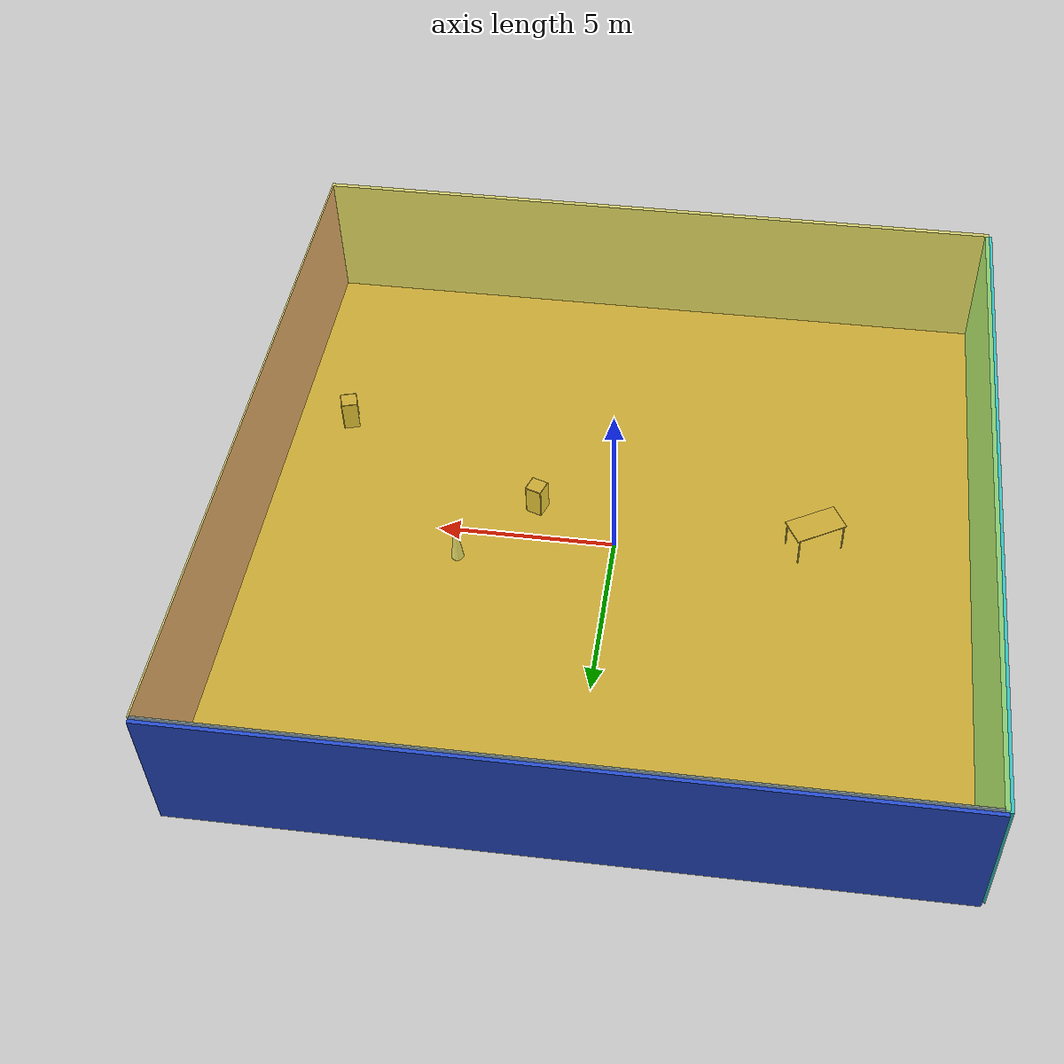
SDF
<sdf version="1.4">
 <world name="default">
  <physics type="ode">
   <max_step_size>0.001</max_step_size>
   <real_time_factor>1</real_time_factor>
   <real_time_update_rate>1000</real_time_update_rate>
   <gravity>0 0 -9.8</gravity>
  </physics>
  <scene><ambient>0.4 0.4 0.4 1</ambient><background>0.7 0.7 0.7 1</background><shadows>1</shadows></scene>
  <model name="Surrounding">
   <static>1</static>
   <link name="Ceiling">
    <collision name="Ceiling_Collision"><geometry><box><size>20 20 0.1</size></box></geometry></collision>
    <visual name="Ceiling_Visual">
     <geometry><box><size>20 20 0.1</size></box></geometry>
     <material>
      <script>
       <uri>file://media/materials/scripts/gazebo.material</uri>
       <name>Gazebo/YellowTransparent</name>
      </script>
     </material>
    </visual>
    <pose>0 0 4.05 0 0 0</pose>
   </link>
   <link name="Wall_South">
    <collision name="Wall_South_Collision">
     <geometry><box><size>20 0 4</size></box></geometry>
     <pose>0 0 2 0 -0 0</pose>
    </collision>
    <visual name="Wall_South_Visual">
     <pose>0 0 2 0 -0 0</pose>
     <geometry><box><size>20 0 4</size></box></geometry>
     <material>
      <script><uri>file://media/materials/scripts/gazebo.material</uri><name>Gazebo/LightOff</name></script>
     </material>
    </visual>
    <velocity_decay><linear>0</linear><angular>0</angular></velocity_decay>
    <pose>0 -10 0 0 -0 0</pose>
   </link>
   <link name="Wall_East">
    <collision name="Wall_21_Collision">
     <geometry><box><size>20 0 4</size></box></geometry>
     <pose>0 0 2 0 -0 0</pose>
    </collision>
    <visual name="Wall_21_Visual">
     <pose>0 0 2 0 -0 0</pose>
     <geometry><box><size>20 0 4</size></box></geometry>
     <material>
      <script><uri>file://media/materials/scripts/gazebo.material</uri><name>Gazebo/PurpleGlow</name></script>
     </material>
    </visual>
    <velocity_decay><linear>0</linear><angular>0</angular></velocity_decay>
    <pose>10 0 0 0 -0 1.5708</pose>
   </link>
   <link name="Wall_North">
    <collision name="Wall_22_Collision">
     <geometry><box><size>20 0.2 4</size></box></geometry>
     <pose>0 0 2 0 -0 0</pose>
    </collision>
    <visual name="Wall_22_Visual">
     <pose>0 0 2 0 -0 0</pose>
     <geometry><box><size>20 0.2 4</size></box></geometry>
     <material>
      <script><uri>file://media/materials/scripts/gazebo.material</uri><name>Gazebo/BlueLaser</name></script>
     </material>
    </visual>
    <velocity_decay><linear>0</linear><angular>0</angular></velocity_decay>
    <pose>0 10 0 0 -0 0</pose>
   </link>
   <link name="Wall_West">
    <collision name="Wall_23_Collision">
     <geometry><box><size>20 0.2 4</size></box></geometry>
     <pose>0 0 2 0 -0 0</pose>
    </collision>
    <visual name="Wall_23_Visual">
     <pose>0 0 2 0 -0 0</pose>
     <geometry><box><size>20 0.2 4</size></box></geometry>
     <material>
      <script><uri>file://media/materials/scripts/gazebo.material</uri><name>Gazebo/TurquoiseGlow</name></script>
     </material>
    </visual>
    <velocity_decay><linear>0</linear><angular>0</angular></velocity_decay>
    <pose>-10 0 0 0 0 -1.5708</pose>
   </link>
   <link name="Ground_link">
    <collision name="collision">
     <pose>0 0 .05 0 -0 0</pose>
     <geometry><box><size>20 20 0.1</size></box></geometry>
    </collision>
    <visual name="visual">
     <pose>0 0 .05 0 -0 0</pose>
     <geometry><box><size>20 20 0.1</size></box></geometry>
     <material>
      <script><uri>file://media/materials/scripts/gazebo.material</uri><name>Gazebo/Wood</name></script>
     </material>
    </visual>
   </link>
   <static>1</static>
  </model>
  <spherical_coordinates>
   <surface_model>EARTH_WGS84</surface_model>
   <latitude_deg>0</latitude_deg>
   <longitude_deg>0</longitude_deg>
   <elevation>0</elevation>
   <heading_deg>0</heading_deg>
  </spherical_coordinates>
  <light name="lightball_0" type="diffuse">
   <diffuse>0.8 0.8 0.8 1</diffuse>
   <specular>0.2 0.2 0.2 1</specular>
   <attenuation>
    <range>100</range>
    <constant>0.7</constant>
    <linear>0.01</linear>
    <quadratic>0.001</quadratic>
   </attenuation>
   <direction>-0.5 0.1 -0.9</direction>
   <pose>-6.46920272594 0.415939435179 0.548049722856 0 0 0</pose>
  </light>
  <light name="lightball_1" type="diffuse">
   <diffuse>0.8 0.8 0.8 1</diffuse>
   <specular>0.2 0.2 0.2 1</specular>
   <attenuation>
    <range>100</range>
    <constant>0.7</constant>
    <linear>0.01</linear>
    <quadratic>0.001</quadratic>
   </attenuation>
   <direction>-0.5 0.1 -0.9</direction>
   <pose>2.61646861189 0.193820318677 0.982517979763 0 0 0</pose>
  </light>
  <light name="lightball_2" type="diffuse">
   <diffuse>0.8 0.8 0.8 1</diffuse>
   <specular>0.2 0.2 0.2 1</specular>
   <attenuation>
    <range>100</range>
    <constant>0.7</constant>
    <linear>0.01</linear>
    <quadratic>0.001</quadratic>
   </attenuation>
   <direction>-0.5 0.1 -0.9</direction>
   <pose>-0.443490004944 1.01327773132 3.28086880282 0 0 0</pose>
  </light>
  <light name="lightball_3" type="diffuse">
   <diffuse>0.8 0.8 0.8 1</diffuse>
   <specular>0.2 0.2 0.2 1</specular>
   <attenuation>
    <range>100</range>
    <constant>0.7</constant>
    <linear>0.01</linear>
    <quadratic>0.001</quadratic>
   </attenuation>
   <direction>-0.5 0.1 -0.9</direction>
   <pose>8.55776321502 6.81443403794 1.96121543733 0 0 0</pose>
  </light>
  <light name="lightball_4" type="diffuse">
   <diffuse>0.8 0.8 0.8 1</diffuse>
   <specular>0.2 0.2 0.2 1</specular>
   <attenuation>
    <range>100</range>
    <constant>0.7</constant>
    <linear>0.01</linear>
    <quadratic>0.001</quadratic>
   </attenuation>
   <direction>-0.5 0.1 -0.9</direction>
   <pose>5.74001837436 2.3449808499 3.54255982728 0 0 0</pose>
  </light>
  <light name="lightball_5" type="diffuse">
   <diffuse>0.8 0.8 0.8 1</diffuse>
   <specular>0.2 0.2 0.2 1</specular>
   <attenuation>
    <range>100</range>
    <constant>0.7</constant>
    <linear>0.01</linear>
    <quadratic>0.001</quadratic>
   </attenuation>
   <direction>-0.5 0.1 -0.9</direction>
   <pose>-0.825140885839 -9.109253587 0.998201205718 0 0 0</pose>
  </light>
  <light name="lightball_6" type="diffuse">
   <diffuse>0.8 0.8 0.8 1</diffuse>
   <specular>0.2 0.2 0.2 1</specular>
   <attenuation>
    <range>100</range>
    <constant>0.7</constant>
    <linear>0.01</linear>
    <quadratic>0.001</quadratic>
   </attenuation>
   <direction>-0.5 0.1 -0.9</direction>
   <pose>-5.02059934811 3.80131162305 3.13866864563 0 0 0</pose>
  </light>
  <light name="lightball_7" type="diffuse">
   <diffuse>0.8 0.8 0.8 1</diffuse>
   <specular>0.2 0.2 0.2 1</specular>
   <attenuation>
    <range>100</range>
    <constant>0.7</constant>
    <linear>0.01</linear>
    <quadratic>0.001</quadratic>
   </attenuation>
   <direction>-0.5 0.1 -0.9</direction>
   <pose>4.03944541575 6.25088732867 3.67781282801 0 0 0</pose>
  </light>
  <light name="lightball_8" type="diffuse">
   <diffuse>0.8 0.8 0.8 1</diffuse>
   <specular>0.2 0.2 0.2 1</specular>
   <attenuation>
    <range>100</range>
    <constant>0.7</constant>
    <linear>0.01</linear>
    <quadratic>0.001</quadratic>
   </attenuation>
   <direction>-0.5 0.1 -0.9</direction>
   <pose>1.62141587981 0.970942724163 3.74748698837 0 0 0</pose>
  </light>
  <light name="lightball_9" type="diffuse">
   <diffuse>0.8 0.8 0.8 1</diffuse>
   <specular>0.2 0.2 0.2 1</specular>
   <attenuation>
    <range>100</range>
    <constant>0.7</constant>
    <linear>0.01</linear>
    <quadratic>0.001</quadratic>
   </attenuation>
   <direction>-0.5 0.1 -0.9</direction>
   <pose>3.79091284276 4.17277321416 1.42953292436 0 0 0</pose>
  </light>
  <light name="lightball_10" type="diffuse">
   <diffuse>0.8 0.8 0.8 1</diffuse>
   <specular>0.2 0.2 0.2 1</specular>
   <attenuation>
    <range>100</range>
    <constant>0.7</constant>
    <linear>0.01</linear>
    <quadratic>0.001</quadratic>
   </attenuation>
   <direction>-0.5 0.1 -0.9</direction>
   <pose>7.43370697572 -5.58594946398 1.16674952998 0 0 0</pose>
  </light>
  <light name="lightball_11" type="diffuse">
   <diffuse>0.8 0.8 0.8 1</diffuse>
   <specular>0.2 0.2 0.2 1</specular>
   <attenuation>
    <range>100</range>
    <constant>0.7</constant>
    <linear>0.01</linear>
    <quadratic>0.001</quadratic>
   </attenuation>
   <direction>-0.5 0.1 -0.9</direction>
   <pose>1.49974851424 -0.185942530053 2.89473784052 0 0 0</pose>
  </light>
  <light name="lightball_12" type="diffuse">
   <diffuse>0.8 0.8 0.8 1</diffuse>
   <specular>0.2 0.2 0.2 1</specular>
   <attenuation>
    <range>100</range>
    <constant>0.7</constant>
    <linear>0.01</linear>
    <quadratic>0.001</quadratic>
   </attenuation>
   <direction>-0.5 0.1 -0.9</direction>
   <pose>-3.17364956064 -8.01308473851 2.18797683831 0 0 0</pose>
  </light>
  <light name="lightball_13" type="diffuse">
   <diffuse>0.8 0.8 0.8 1</diffuse>
   <specular>0.2 0.2 0.2 1</specular>
   <attenuation>
    <range>100</range>
    <constant>0.7</constant>
    <linear>0.01</linear>
    <quadratic>0.001</quadratic>
   </attenuation>
   <direction>-0.5 0.1 -0.9</direction>
   <pose>-1.7604371278 -9.18840504067 2.9000156663 0 0 0</pose>
  </light>
  <include><uri>model://table</uri><pose>-5.54279823367 -0.577077111445 0 0 0 0.518253937163</pose></include>
  <include><uri>model://cabinet</uri><pose>2.35142417978 -1.05532226006 0 0 0 1.24080935393</pose></include>
  <include>
   <uri>model://construction_cone</uri>
   <pose>4.28497583314 1.02547196066 0 0 0 0.777983717437</pose>
  </include>
  <include><uri>model://cabinet</uri><pose>8.40988097477 -3.77545662863 0 0 0 0.278951420972</pose></include>
 </world>
</sdf>

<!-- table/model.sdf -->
<sdf version="1.5">
  <model name="table">
    <static>true</static>
    <link name="link">
      <collision name="surface">
        <pose>0 0 1.0 0 0 0</pose>
        <geometry>
          <box>
            <size>1.5 0.8 0.03</size>
          </box>
        </geometry>
        <surface>
          <friction>
            <ode>
              <mu>0.6</mu>
              <mu2>0.6</mu2>
            </ode>
          </friction>
        </surface>
      </collision>
      <visual name="visual1">
        <pose>0 0 1.0 0 0 0</pose>
        <geometry>
          <box>
            <size>1.5 0.8 0.03</size>
          </box>
        </geometry>
        <material>
          <script>
            <uri>model://media/materials/scripts/gazebo.material</uri>
            <name>Gazebo/Wood</name>
          </script>
        </material>
      </visual>
      <collision name="front_left_leg">
        <pose>0.68 0.38 0.5 0 0 0</pose>
        <geometry>
          <cylinder>
            <radius>0.02</radius>
            <length>1.0</length>
          </cylinder>
        </geometry>
      </collision>
      <visual name="front_left_leg">
        <pose>0.68 0.38 0.5 0 0 0</pose>
        <geometry>
          <cylinder>
            <radius>0.02</radius>
            <length>1.0</length>
          </cylinder>
        </geometry>
        <material>
          <script>
            <uri>model://media/materials/scripts/gazebo.material</uri>
            <name>Gazebo/Grey</name>
          </script>
        </material>
      </visual>
      <collision name="front_right_leg">
        <pose>0.68 -0.38 0.5 0 0 0</pose>
        <geometry>
          <cylinder>
            <radius>0.02</radius>
            <length>1.0</length>
          </cylinder>
        </geometry>
      </collision>
      <visual name="front_right_leg">
        <pose>0.68 -0.38 0.5 0 0 0</pose>
        <geometry>
          <cylinder>
            <radius>0.02</radius>
            <length>1.0</length>
          </cylinder>
        </geometry>
        <material>
          <script>
            <uri>model://media/materials/scripts/gazebo.material</uri>
            <name>Gazebo/Grey</name>
          </script>
        </material>
      </visual>
      <collision name="back_right_leg">
        <pose>-0.68 -0.38 0.5 0 0 0</pose>
        <geometry>
          <cylinder>
            <radius>0.02</radius>
            <length>1.0</length>
          </cylinder>
        </geometry>
      </collision>
      <visual name="back_right_leg">
        <pose>-0.68 -0.38 0.5 0 0 0</pose>
        <geometry>
          <cylinder>
            <radius>0.02</radius>
            <length>1.0</length>
          </cylinder>
        </geometry>
        <material>
          <script>
            <uri>model://media/materials/scripts/gazebo.material</uri>
            <name>Gazebo/Grey</name>
          </script>
        </material>
      </visual>
      <collision name="back_left_leg">
        <pose>-0.68 0.38 0.5 0 0 0</pose>
        <geometry>
          <cylinder>
            <radius>0.02</radius>
            <length>1.0</length>
          </cylinder>
        </geometry>
      </collision>
      <visual name="back_left_leg">
        <pose>-0.68 0.38 0.5 0 0 0</pose>
        <geometry>
          <cylinder>
            <radius>0.02</radius>
            <length>1.0</length>
          </cylinder>
        </geometry>
        <material>
          <script>
            <uri>model://media/materials/scripts/gazebo.material</uri>
            <name>Gazebo/Grey</name>
          </script>
        </material>
      </visual>
    </link>
  </model>
</sdf>

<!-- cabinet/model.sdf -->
<sdf version="1.5">
  <model name="cabinet">
    <static>true</static>
    <link name="cabinet_bottom_plate">
      <inertial>
        <pose>0 0 -1 0 0 0</pose>
        <inertia>
          <ixx>2.050000</ixx>
          <ixy>0</ixy>
          <ixz>0</ixz>
          <iyy>2.050000</iyy>
          <iyz>0</iyz>
          <izz>2.050000</izz>
        </inertia>
        <mass>25.000000</mass>
      </inertial>
      <collision name="cabinet_bottom_plate_geom">
        <pose>0 0 0.010000 0 0 0</pose>
        <geometry>
          <box>
            <size>0.450000 0.450000 0.020000</size>
          </box>
        </geometry>
      </collision>
      <visual name="cabinet_bottom_plate_geom_visual">
        <pose>0 0 0.010000 0 0 0</pose>
        <geometry>
          <box>
            <size>0.450000 0.450000 0.020000</size>
          </box>
        </geometry>
        <material>
          <script>
            <uri>model://media/materials/scripts/gazebo.material</uri>
            <name>Gazebo/Wood</name>
          </script>
        </material>
      </visual>
      <collision name="cabinet_bottom_plate_geom_cabinet_back_plate">
        <pose>0.235000 0 0.510000 0 0 0</pose>
        <geometry>
          <box>
            <size>0.020000 0.450000 1.020000</size>
          </box>
        </geometry>
      </collision>
      <visual name="cabinet_bottom_plate_geom_cabinet_back_plate_visual">
        <pose>0.235000 0 0.510000 0 0 0</pose>
        <geometry>
          <box>
            <size>0.020000 0.450000 1.020000</size>
          </box>
        </geometry>
        <material>
          <script>
            <uri>model://media/materials/scripts/gazebo.material</uri>
            <name>Gazebo/Wood</name>
          </script>
        </material>
      </visual>
      <collision name="cabinet_bottom_plate_geom_cabinet_left_plate">
        <pose>0 0.235000 0.510000 0 0 0</pose>
        <geometry>
          <box>
            <size>0.450000 0.020000 1.020000</size>
          </box>
        </geometry>
      </collision>
      <visual name="cabinet_bottom_plate_geom_cabinet_left_plate_visual">
        <pose>0 0.235000 0.510000 0 0 0</pose>
        <geometry>
          <box>
            <size>0.450000 0.020000 1.020000</size>
          </box>
        </geometry>
        <material>
          <script>
            <uri>model://media/materials/scripts/gazebo.material</uri>
            <name>Gazebo/Wood</name>
          </script>
        </material>
      </visual>
      <collision name="cabinet_bottom_plate_geom_cabinet_middle_plate">
        <pose>0 0 0.510000 0 0 0</pose>
        <geometry>
          <box>
            <size>0.450000 0.450000 0.020000</size>
          </box>
        </geometry>
      </collision>
      <visual name="cabinet_bottom_plate_geom_cabinet_middle_plate_visual">
        <pose>0 0 0.510000 0 0 0</pose>
        <geometry>
          <box>
            <size>0.450000 0.450000 0.020000</size>
          </box>
        </geometry>
        <material>
          <script>
            <uri>model://media/materials/scripts/gazebo.material</uri>
            <name>Gazebo/Wood</name>
          </script>
        </material>
      </visual>
      <collision name="cabinet_bottom_plate_geom_cabinet_right_plate">
        <pose>0 -0.235000 0.510000 0 0 0</pose>
        <geometry>
          <box>
            <size>0.450000 0.020000 1.020000</size>
          </box>
        </geometry>
      </collision>
      <visual name="cabinet_bottom_plate_geom_cabinet_right_plate_visual">
        <pose>0 -0.235000 0.510000 0 0 0</pose>
        <geometry>
          <box>
            <size>0.450000 0.020000 1.020000</size>
          </box>
        </geometry>
        <material>
          <script>
            <uri>model://media/materials/scripts/gazebo.material</uri>
            <name>Gazebo/Wood</name>
          </script>
        </material>
      </visual>
      <collision name="cabinet_bottom_plate_geom_cabinet_top_plate">
        <pose>0 0 1.010000 0 0 0</pose>
        <geometry>
          <box>
            <size>0.450000 0.450000 0.020000</size>
          </box>
        </geometry>
      </collision>
      <visual name="cabinet_bottom_plate_geom_cabinet_top_plate_visual">
        <pose>0 0 1.010000 0 0 0</pose>
        <geometry>
          <box>
            <size>0.450000 0.450000 0.020000</size>
          </box>
        </geometry>
        <material>
          <script>
            <uri>model://media/materials/scripts/gazebo.material</uri>
            <name>Gazebo/Wood</name>
          </script>
        </material>
      </visual>
    </link>
  </model>
</sdf>

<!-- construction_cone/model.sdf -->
<sdf version="1.5">
  <model name="Construction Cone">
    <link name="link">
      <collision name="collision">
        <geometry>
          <mesh>
            <scale>10 10 10</scale>
            <uri>file://isr-testbed/construction_cone/meshes/construction_cone.dae</uri>
          </mesh>
        </geometry>
      </collision>
      <visual name="visual">
        <geometry>
          <mesh>
            <scale>10 10 10</scale>
            <uri>file://isr-testbed/construction_cone/meshes/construction_cone.dae</uri>
          </mesh>
        </geometry>
      </visual>
    </link>
  </model>
</sdf>
